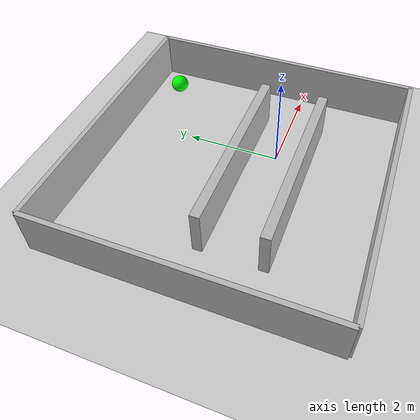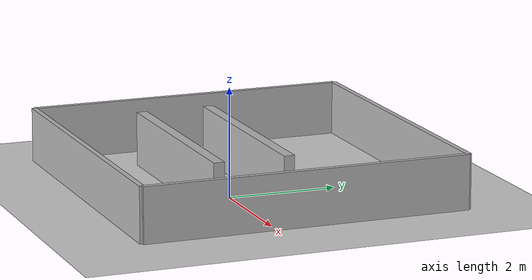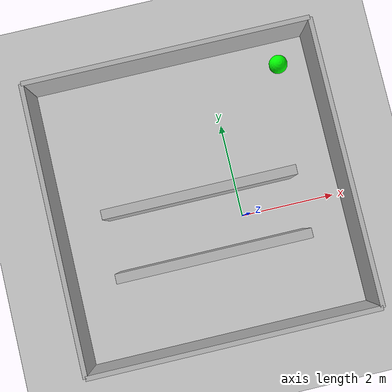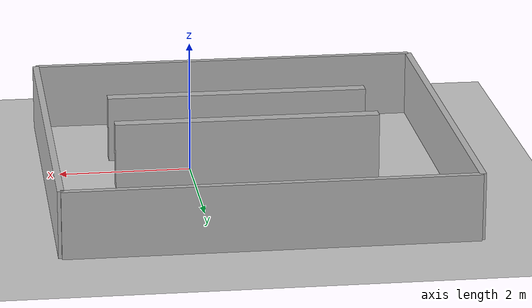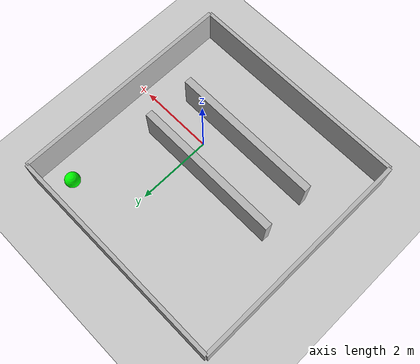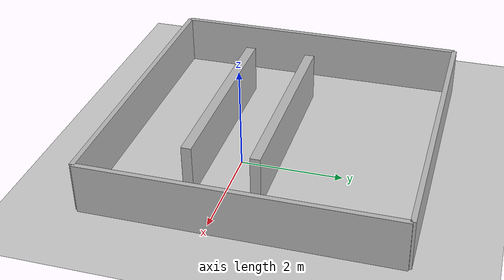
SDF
<?xml version="1.0"?>
<sdf version="1.6">
  <world name="martha_test_world_4">
    <physics name="default_physics" type="ode">
      <max_step_size>0.001</max_step_size>
      <real_time_update_rate>1000</real_time_update_rate>
      <real_time_factor>1.0</real_time_factor>
    </physics>
    <gravity>0 0 -9.81</gravity>
    <include><uri>model://sun</uri></include>
    <include><uri>model://ground_plane</uri></include>
    <plugin name="gazebo_ros_state" filename="libgazebo_ros_state.so">
      <ros><namespace>/gazebo</namespace></ros>
      <update_rate>50.0</update_rate>
    </plugin>

    <!-- Arena center: (-0.8, 0.6). -->
    <model name="wall_left"><static>true</static><pose>-0.8 3.6 0.5 0 0 0</pose><link name="link"><collision name="collision"><geometry><box><size>6 0.1 1</size></box></geometry></collision><visual name="visual"><geometry><box><size>6 0.1 1</size></box></geometry></visual></link></model>
    <model name="wall_right"><static>true</static><pose>-0.8 -2.4 0.5 0 0 0</pose><link name="link"><collision name="collision"><geometry><box><size>6 0.1 1</size></box></geometry></collision><visual name="visual"><geometry><box><size>6 0.1 1</size></box></geometry></visual></link></model>
    <model name="wall_front"><static>true</static><pose>2.2 0.6 0.5 0 0 0</pose><link name="link"><collision name="collision"><geometry><box><size>0.1 6 1</size></box></geometry></collision><visual name="visual"><geometry><box><size>0.1 6 1</size></box></geometry></visual></link></model>
    <model name="wall_back"><static>true</static><pose>-3.8 0.6 0.5 0 0 0</pose><link name="link"><collision name="collision"><geometry><box><size>0.1 6 1</size></box></geometry></collision><visual name="visual"><geometry><box><size>0.1 6 1</size></box></geometry></visual></link></model>

    <!-- A 1.10 m passage centered around the spawn. -->
    <model name="narrow_wall_1"><static>true</static><pose>-0.8 0.65 0.5 0 0 0</pose><link name="link"><collision name="collision"><geometry><box><size>4 0.2 1</size></box></geometry></collision><visual name="visual"><geometry><box><size>4 0.2 1</size></box></geometry></visual></link></model>
    <model name="narrow_wall_2"><static>true</static><pose>-0.8 -0.65 0.5 0 0 0</pose><link name="link"><collision name="collision"><geometry><box><size>4 0.2 1</size></box></geometry></collision><visual name="visual"><geometry><box><size>4 0.2 1</size></box></geometry></visual></link></model>

    <model name="goal_point">
      <static>true</static><pose>1.5 3.0 0.2 0 0 0</pose>
      <link name="link"><visual name="visual"><geometry><sphere><radius>0.2</radius></sphere></geometry><material><ambient>0 1 0 1</ambient><diffuse>0 1 0 1</diffuse></material></visual></link>
    </model>
  </world>
</sdf>
